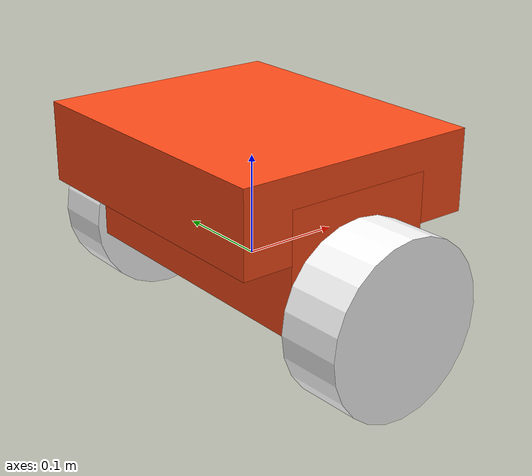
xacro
<robot name="GeneratedRobot">

    <material name="white">
        <color rgba="1 1 1 1" />
    </material>

    <material name="orange">
        <color rgba="1 0.3 0.1 1"/>
    </material>

    <material name="blue">
        <color rgba="0.2 0.2 1 1"/>
    </material>

    <material name="black">
        <color rgba="0 0 0 1"/>
    </material>

    <material name="red">
        <color rgba="1 0 0 1"/>
    </material>

    <link name = "base_link">
        <origin xyz="0.0 0.0 0.08" rpy="0.0 0.0 0.0"/>
    </link>

    <joint name="chassis_joint" type="fixed">
        <origin xyz="0.0 0.0 0.0" rpy="0.0 0.0 0.0"/>
        <parent link="base_link"/>
        <child link="chassis"/>
    </joint>

    <!-- CHASSIS LINK -->

    <link name="chassis">
        <visual>
            <origin xyz="0 0 0.05" rpy="0 0 0" />
            <geometry>
                <box size="0.15 0.3 0.12" />
            </geometry>
            <material name="orange"/>
        </visual>
        <visual>
            <origin xyz="0.0 0.0 0.1" rpy="0.0 0.0 0.0"/>
            <geometry>
                <box size="0.25 0.3 0.08"/>
            </geometry>
            <material name = "orange"/>
        </visual>
        <collision>
            <origin xyz="0 0 0.08" rpy="0 0 0" />
            <geometry>
                <box size="0.18 0.3 0.15" />
            </geometry>
        </collision>
        <collision>
            <origin xyz="0.0 0.0 0.1" rpy="0.0 0.0 0.0"/>
            <geometry>
                <box size="0.25 0.3 0.08"/>
            </geometry>
            <material name = "orange"/>
        </collision>
        <inertial>
            <origin xyz="0 0 0.08" rpy="0 0 0" />
            <mass value="7"/>
            <inertia ixx="0.061" ixy="0" ixz="0" iyy="0.022" iyz="0" izz="0.066" />
        </inertial>
    </link>

    <gazebo reference="chassis">
        <material>Gazebo/Orange</material>
    </gazebo>

    <joint name="base_footprint_joint" type="fixed">
        <parent link="base_link"/>
        <child link="base_footprint"/>
        <origin xyz="0.0 0.0 0.0" rpy="0.0 0.0 0.0"/>
    </joint>

    <link name="base_footprint">

    </link>

    <!-- LEFT WHEEL -->

    <link name="left_wheel">
        <visual>
            <origin xyz="0 0 0" rpy="0 0 0" />
            <geometry>
                <cylinder radius="0.08499999999999996" length="0.0635" />
            </geometry>
            <material name="white"/>
        </visual>
        <collision>
            <origin xyz="0 0 0" rpy="0 0 0" />
            <geometry>
                <cylinder radius="0.08499999999999996" length="0.0635" />
            </geometry>
        </collision>
        <inertial>
            <origin xyz="0 0 0" rpy="0 0 0" />
            <mass value="2" />
            <inertia ixx="0.019266666666666668" ixy="0" ixz="0" iyy="0.028900000000000006" iyz="0" izz="0.019266666666666668" />
        </inertial>
    </link>

    <joint name="left_wheel_joint" type="continuous">
        <parent link="chassis" />
        <child link="left_wheel" />
        <origin xyz="0 0.18 0" rpy="1.5707963267948963 0 0" />
        <axis xyz="0 0 1"/>
    </joint>

    <gazebo reference="left_wheel">
        <material>Gazebo/White</material>
    </gazebo>

    <!-- RIGHT WHEEL -->

    <link name="right_wheel">
        <visual>
            <origin xyz="0 0 0" rpy="0 0 0" />
            <geometry>
                <cylinder radius="0.085" length="0.0635" />
            </geometry>
            <material name="white"/>
        </visual>
        <collision>
            <origin xyz="0 0 0" rpy="0 0 0" />
            <geometry>
                <cylinder radius="0.085" length="0.0635" />
            </geometry>
        </collision>
        <inertial>
            <origin xyz="0 0 0" rpy="0 0 0" />
            <mass value="1" />
            <inertia ixx="0" ixy="0" ixz="0" iyy="0" iyz="0" izz="0" />
        </inertial>
    </link>

    <joint name="right_wheel_joint" type="continuous">
        <parent link="chassis" />
        <child link="right_wheel" />
        <origin xyz="0 -0.18 0" rpy="1.5707963267948966 0 0.030840783524403125" />
        <axis xyz="0 0 1"/>
    </joint>

    <gazebo reference="right_wheel">
        <material>Gazebo/White</material>
    </gazebo>

</robot>
